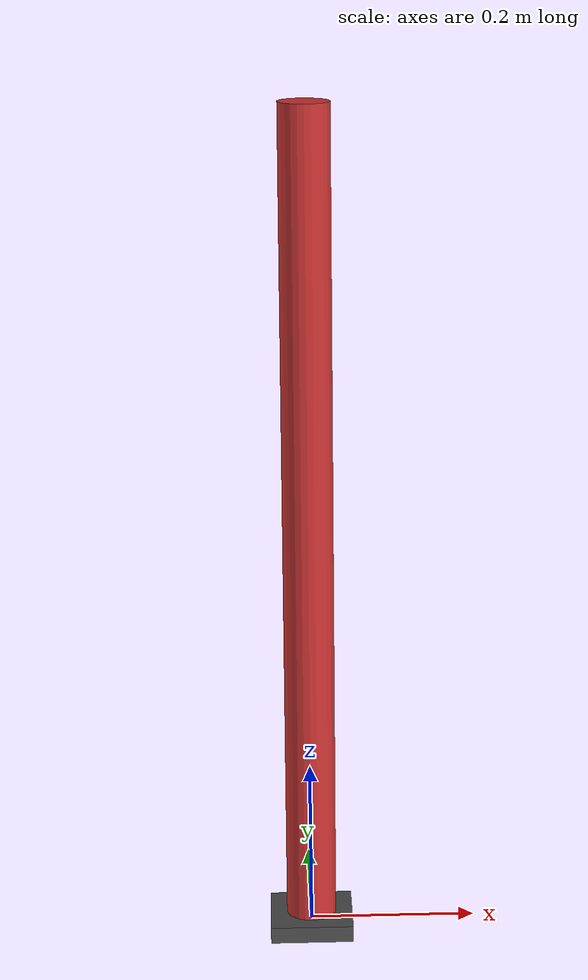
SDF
<?xml version="1.0"?>
<sdf version="1.11">
  <model name="inverted_pendulum">
    <static>false</static>

    <!-- 底座，固定在世界坐标原点 -->
    <link name="base">
      <pose>0 0 0 0 0 0</pose>
      <inertial>
        <mass>100</mass>
        <inertia>
          <ixx>1e-6</ixx><iyy>1e-6</iyy><izz>1e-6</izz>
        </inertia>
      </inertial>
      <collision name="base_collision">
        <geometry>
          <box>
            <size>0 0 0</size>
          </box>
        </geometry>
      </collision>
      <visual name="base_visual">
        <geometry>
          <box>
            <size>0.1 0.1 0.02</size>
          </box>
        </geometry>
        <material>
          <ambient>0.3 0.3 0.3 1</ambient>
        </material>
      </visual>
      <!-- 使底座固定在世界上 -->
      <self_collide>false</self_collide>
      <gravity>false</gravity>
    </link>

    <!-- 摆杆 -->
    <link name="pendulum">
      <pose>0 0 0 0 0 0</pose>
      <inertial>
        <pose>0 0 0.5 0 0 0</pose>
        <mass>1.0</mass>
        <inertia>
          <ixx>0.0836</ixx>
          <iyy>0.0836</iyy>
          <izz>0.00045</izz>
        </inertia>
      </inertial>
      <collision name="pendulum_collision">
        <pose>0 0 0.5 0 0 0</pose>
        <geometry>
          <cylinder>
            <radius>0.03</radius>
            <length>1.0</length>
          </cylinder>
        </geometry>
      </collision>
      <visual name="pendulum_visual">
        <pose>0 0 0.5 0 0 0</pose>
        <geometry>
          <cylinder>
            <radius>0.03</radius>
            <length>1.0</length>
          </cylinder>
        </geometry>
        <material>
          <ambient>0.8 0.2 0.2 1</ambient>
          <diffuse>0.8 0.2 0.2 1</diffuse>
        </material>
      </visual>
    </link>

    <!-- 连接底座和摆杆的关节 -->
    <joint name="pivot_joint" type="revolute">
      <parent>base</parent>
      <child>pendulum</child>
      <pose>0 0 0 0 0 0</pose>
      <axis>
        <xyz>0 1 0</xyz>
        <limit>
          <lower>-3.14</lower>
          <upper>3.14</upper>
        </limit>
        <dynamics>
          <damping>0.01</damping>
        </dynamics>
      </axis>
    </joint>
  </model>
</sdf>
